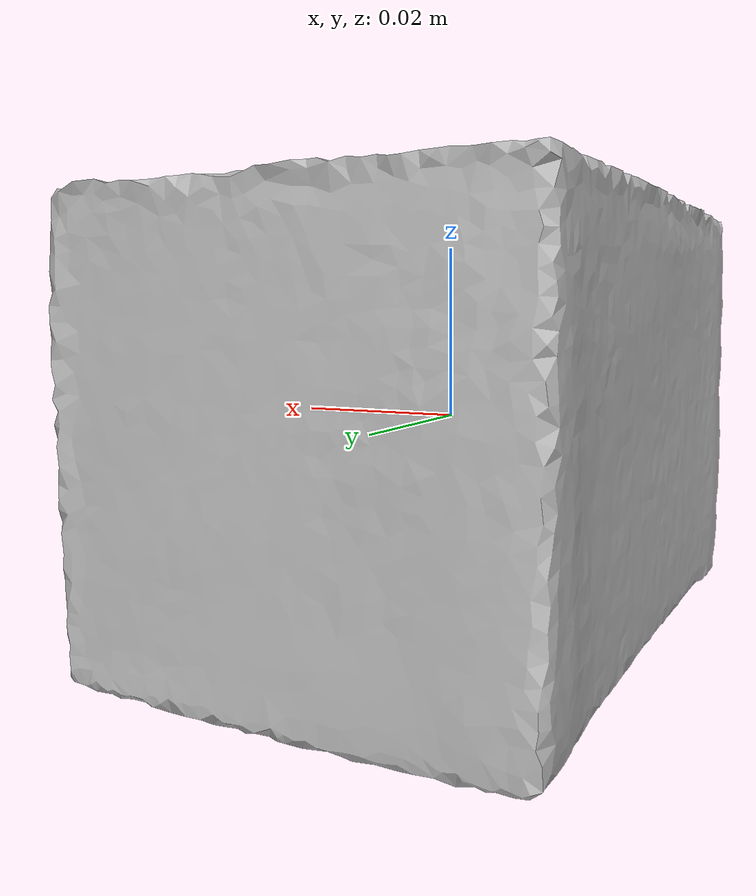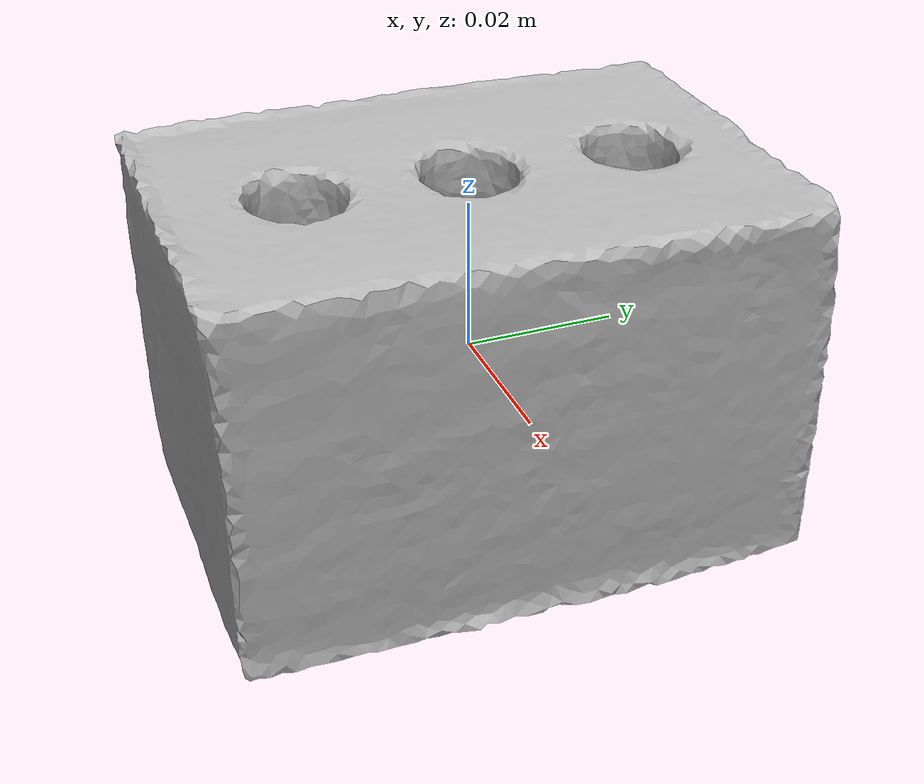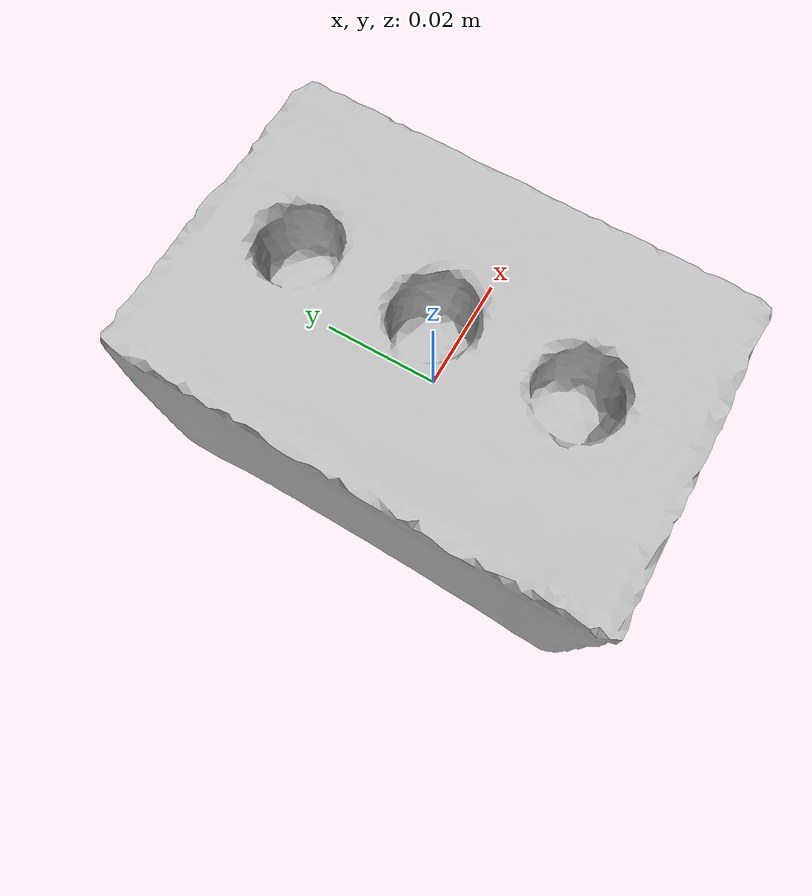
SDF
<?xml version="1.0" ?>
<sdf version="1.7">
<!--
This SDF file was automatically generated using a template modified
and authored by Jinjian Li. The moment of interia is not supposed to be changed.
-->
    <model name="obj_000021">
      <pose>0.0 0.0 0.0 0.0 0.0 0.0</pose>
      <link name="link">
        <inertial>
          <inertia>
           <ixx>0.00018769085131133055</ixx>
           <ixy>-1.1159974129243464e-06</ixy>
           <ixz>-1.9714470812270033e-07</ixz>
           <iyy>0.0001164601664693532</iyy>
           <iyz>1.3283724471320672e-06</iyz>
           <izz>0.00019247325600207015</izz>
          </inertia>
          <mass>0.2773107437041982</mass>
        </inertial>
        <collision name="collision">
          <geometry>
            <mesh>
             <uri>obj_000021.obj</uri>
             <scale>1 1 1</scale>
            </mesh>
          </geometry>
        </collision>

        <visual name="visual">
          <geometry>
            <mesh>
             <uri>obj_000021.obj</uri>
             <scale>1 1 1</scale>
            </mesh>
          </geometry>
        </visual>
      </link>
    </model>
</sdf>
